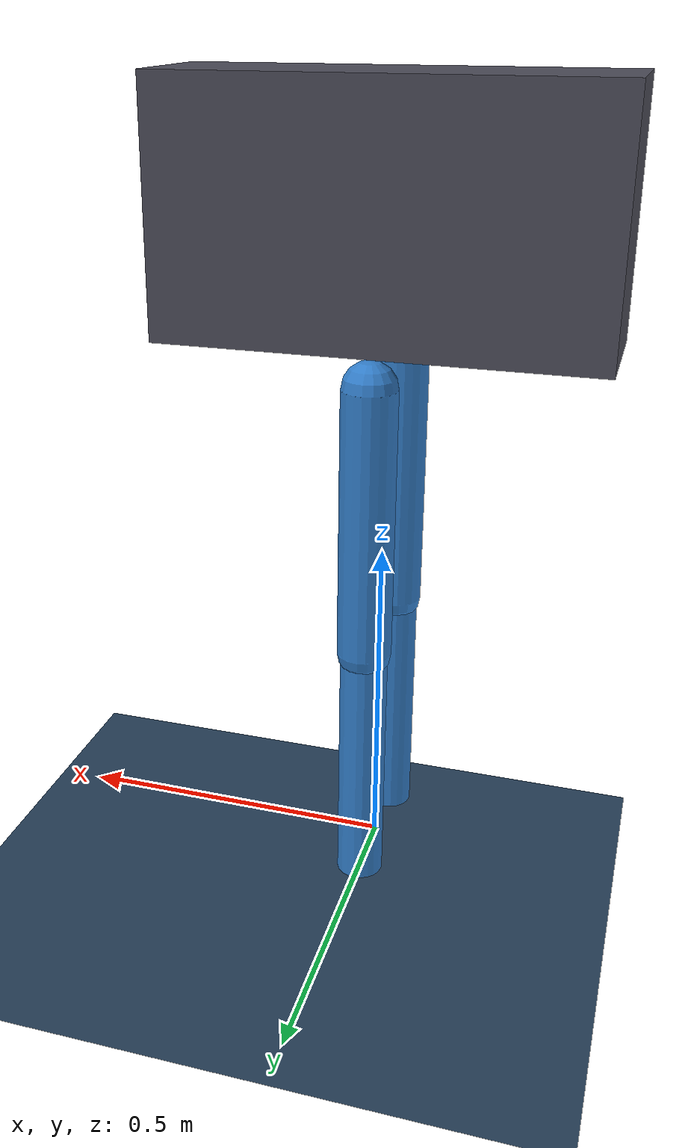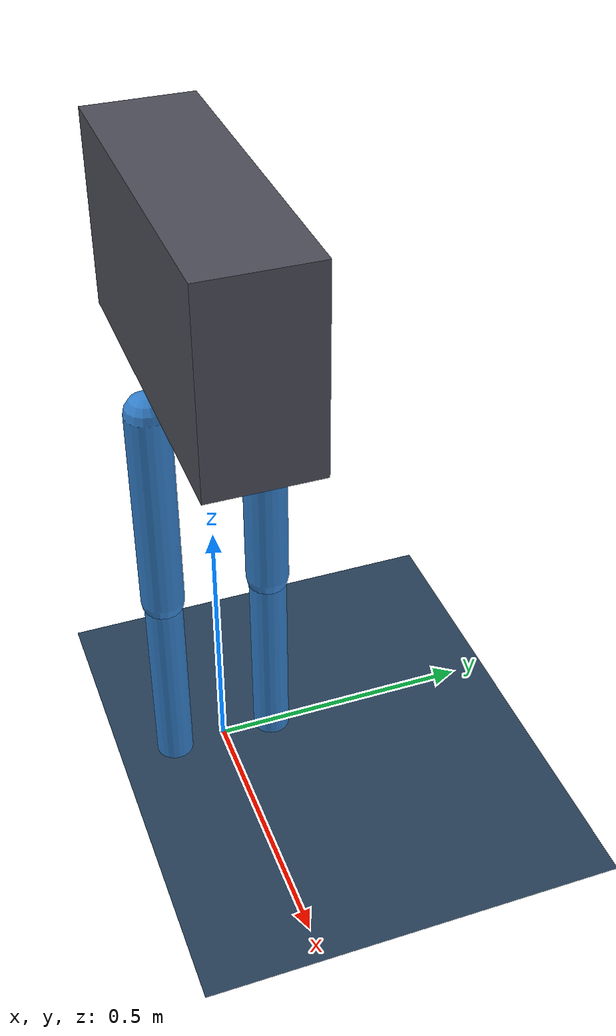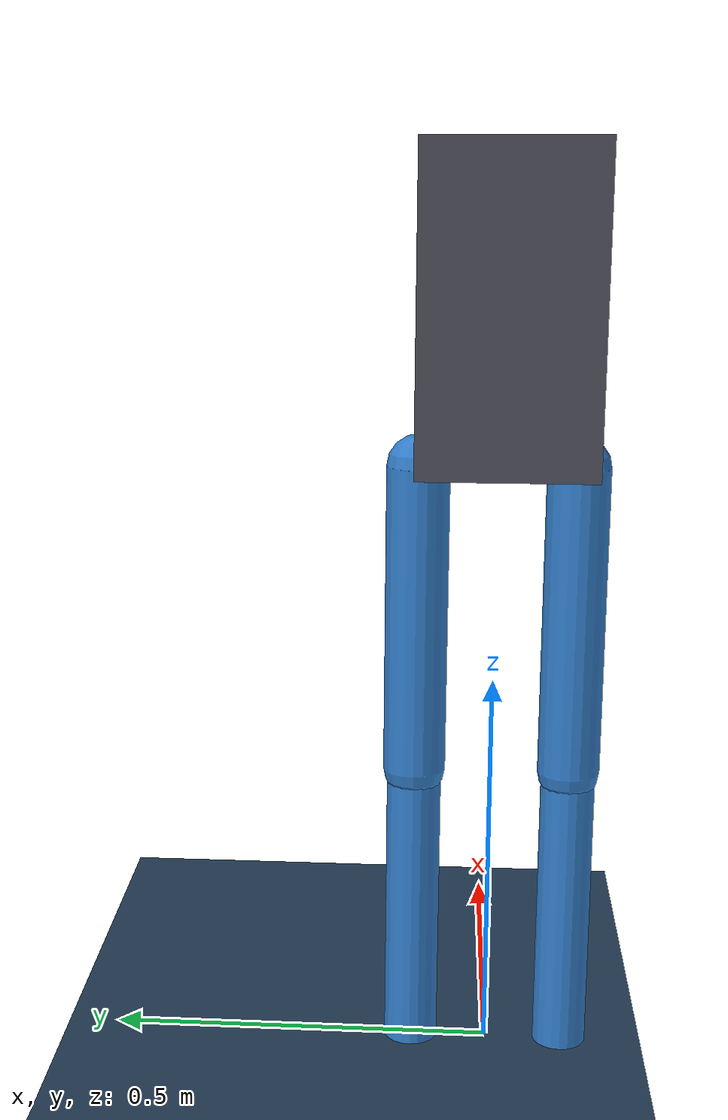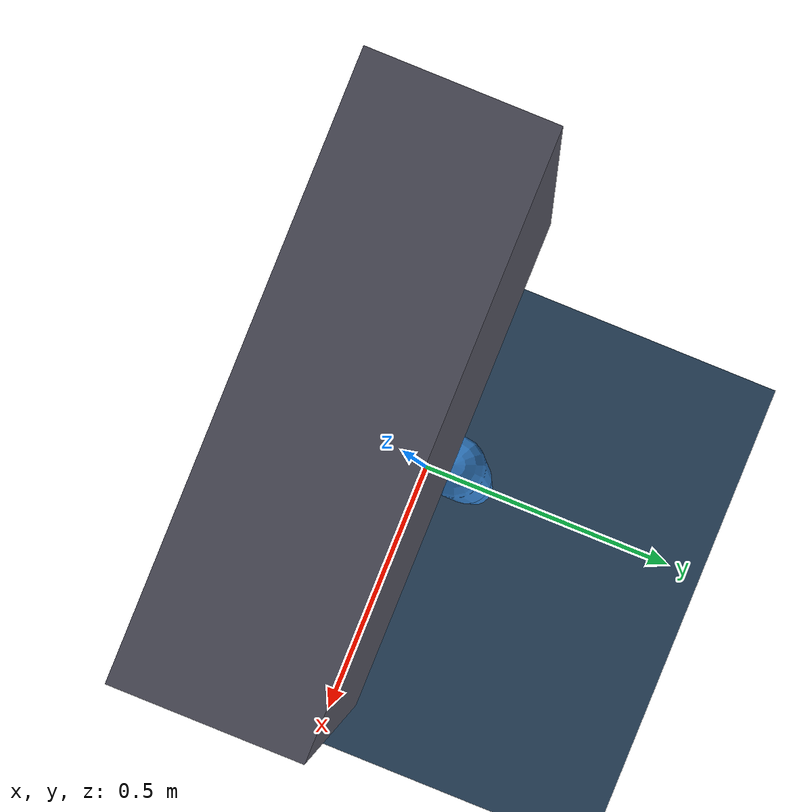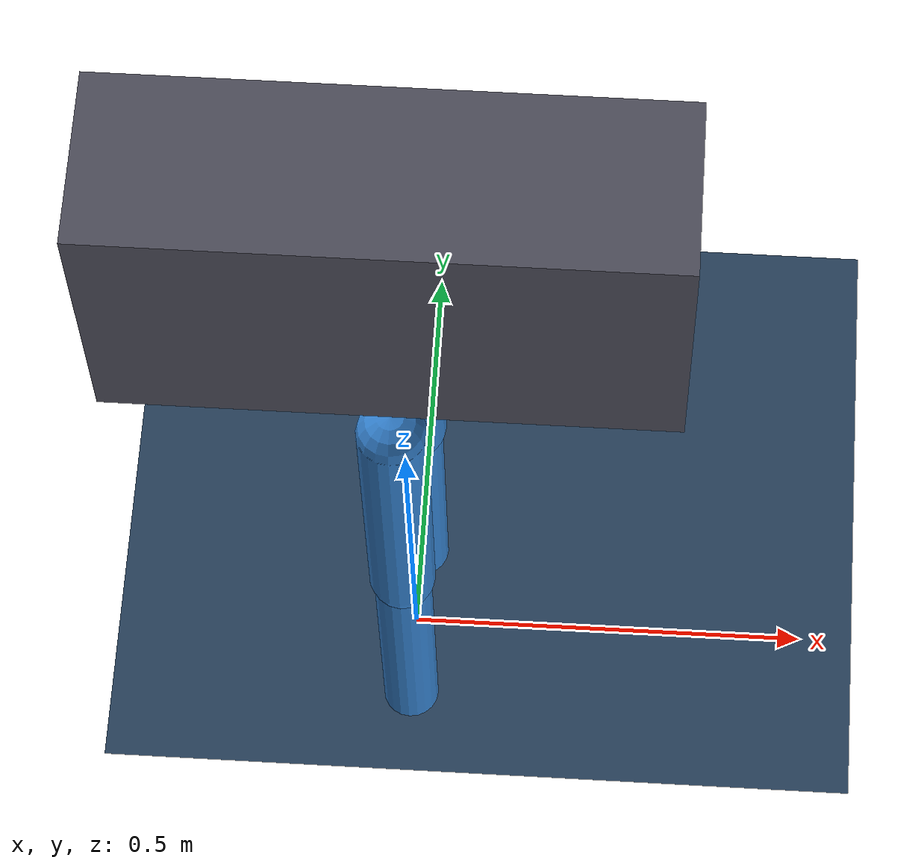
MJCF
<mujoco model="biped_scene">
  <!-- Настройки сцены -->
  <include file="biped.xml"/>

  <statistic center="0 0 0.7" extent="1.5"/>

  <visual>
    <headlight diffuse="0.6 0.6 0.6" ambient="0.3 0.3 0.3" specular="0 0 0"/>
    <rgba haze="0.15 0.25 0.35 1"/>
    <global azimuth="90" elevation="-20"/>
  </visual>

  <asset>
    <texture type="skybox" builtin="gradient" rgb1="0.3 0.5 0.7" rgb2="0 0 0"
             width="512" height="3072"/>
    <texture type="2d" name="groundplane" builtin="checker" mark="edge"
             rgb1="0.2 0.3 0.4" rgb2="0.1 0.2 0.3" markrgb="0.8 0.8 0.8"
             width="300" height="300"/>
    <material name="groundplane" texture="groundplane" texuniform="true"
              texrepeat="5 5" reflectance="0.2"/>
  </asset>

  <worldbody>
    <light pos="0 0 3.5" dir="0 0 -1" directional="true"/>
    <geom name="floor" type="plane" size="0 0 0.05" material="groundplane"
          friction="1.0 0.005 0.0001"/>
  </worldbody>
</mujoco>

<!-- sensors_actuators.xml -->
<mujoco model="sensors_actuators">

  <!--Актуаторы и датчики робота -->

  <actuator>
    <!-- Моторы -->
    <motor name="hip_right"  joint="hip_right"  gear="40" ctrlrange="-1 1"/>
    <motor name="knee_right" joint="knee_right" gear="40" ctrlrange="-1 1"/>
    <motor name="hip_left"   joint="hip_left"   gear="40" ctrlrange="-1 1"/>
    <motor name="knee_left"  joint="knee_left"  gear="40" ctrlrange="-1 1"/>
  </actuator>

  <sensor>
    <!-- Положения и скорости управляемых шарниров -->
    <jointpos name="hip_right_pos"  joint="hip_right"/>
    <jointpos name="knee_right_pos" joint="knee_right"/>
    <jointpos name="hip_left_pos"   joint="hip_left"/>
    <jointpos name="knee_left_pos"  joint="knee_left"/>

    <jointvel name="hip_right_vel"  joint="hip_right"/>
    <jointvel name="knee_right_vel" joint="knee_right"/>
    <jointvel name="hip_left_vel"   joint="hip_left"/>
    <jointvel name="knee_left_vel"  joint="knee_left"/>

    <!-- Моменты, развиваемые актуаторами -->
    <actuatorfrc name="hip_right_frc"  actuator="hip_right"/>
    <actuatorfrc name="knee_right_frc" actuator="knee_right"/>
    <actuatorfrc name="hip_left_frc"   actuator="hip_left"/>
    <actuatorfrc name="knee_left_frc"  actuator="knee_left"/>

    <!-- IMU базы -->
    <framepos     name="base_pos"   objtype="site" objname="imu"/>
    <framequat    name="base_quat"  objtype="site" objname="imu"/>
    <velocimeter  name="base_linvel" site="imu"/>
    <gyro         name="base_gyro"   site="imu"/>
    <accelerometer name="base_acc"   site="imu"/>

    <!-- Контакт стоп с поверхностью -->
    <touch name="foot_right_touch" site="foot_right_site"/>
    <touch name="foot_left_touch"  site="foot_left_site"/>
  </sensor>
</mujoco>

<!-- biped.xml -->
<mujoco model="biped">

  <compiler angle="radian" autolimits="true"/>

  <option timestep="0.002" integrator="implicitfast"/>

  <default>
    <!-- Общие настройки шарниров и звеньев -->
    <joint damping="0.5" armature="0.02"/>
    <geom friction="1.0 0.005 0.0001"/>

    <!-- Вращение вокруг оси Y -->
    <default class="leg_joint">
      <joint type="hinge" axis="0 1 0"/>
    </default>

    <!-- Ноги -->
    <default class="thigh">
      <geom type="capsule" size="0.04" rgba="0.2 0.5 0.8 1" density="900"/>
    </default>
    <default class="shin">
      <geom type="capsule" size="0.035" rgba="0.2 0.5 0.8 1" density="900"/>
    </default>
    <default class="foot">
      <geom type="sphere" size="0.03" rgba="0.9 0.3 0.2 1" density="900"/>
    </default>
  </default>

  <worldbody>
    <!-- База -->
    <body name="base" pos="0 0 1.0">
      <!-- 3 степени свободы: x-z + наклон -->
      <joint name="base_x" type="slide" axis="1 0 0" damping="0" armature="0"/>
      <joint name="base_z" type="slide" axis="0 0 1" damping="0" armature="0"/>
      <joint name="base_pitch" type="hinge" axis="0 1 0" damping="0" armature="0"/>

      <geom name="torso" type="box" size="0.32 0.10 0.18" rgba="0.3 0.3 0.35 1" mass="1 "/>
      <!-- IMU -->
      <site name="imu" pos="0 0 0" size="0.02" rgba="1 1 0 1"/>

      <!--  Правая нога -->
      <body name="thigh_right" pos="0 -0.1 -0.22">
        <joint name="hip_right" class="leg_joint" range="-2.0 2.0"/>
        <geom name="thigh_right" class="thigh" fromto="0 0 0 0 0 -0.4"/>

        <body name="shin_right" pos="0 0 -0.4">
          <joint name="knee_right" class="leg_joint" range="-2.5 0.0"/>
          <geom name="shin_right" class="shin" fromto="0 0 0 0 0 -0.4"/>

          <!-- Стопа -->
          <body name="foot_right" pos="0 0 -0.4">
            <geom name="foot_right" class="foot"/>
            <site name="foot_right_site" pos="0 0 0" size="0.031" rgba="1 1 0 0.3"/>
          </body>
        </body>
      </body>

      <!--Левая нога -->
      <body name="thigh_left" pos="0 0.1 -0.22">
        <joint name="hip_left" class="leg_joint" range="-2.0 2.0"/>
        <geom name="thigh_left" class="thigh" fromto="0 0 0 0 0 -0.4"/>

        <body name="shin_left" pos="0 0 -0.4">
          <joint name="knee_left" class="leg_joint" range="-2.5 0.0"/>
          <geom name="shin_left" class="shin" fromto="0 0 0 0 0 -0.4"/>

          <body name="foot_left" pos="0 0 -0.4">
            <geom name="foot_left" class="foot"/>
            <site name="foot_left_site" pos="0 0 0" size="0.031" rgba="1 1 0 0.3"/>
          </body>
        </body>
      </body>
    </body>
  </worldbody>

  <include file="sensors_actuators.xml"/>
</mujoco>
